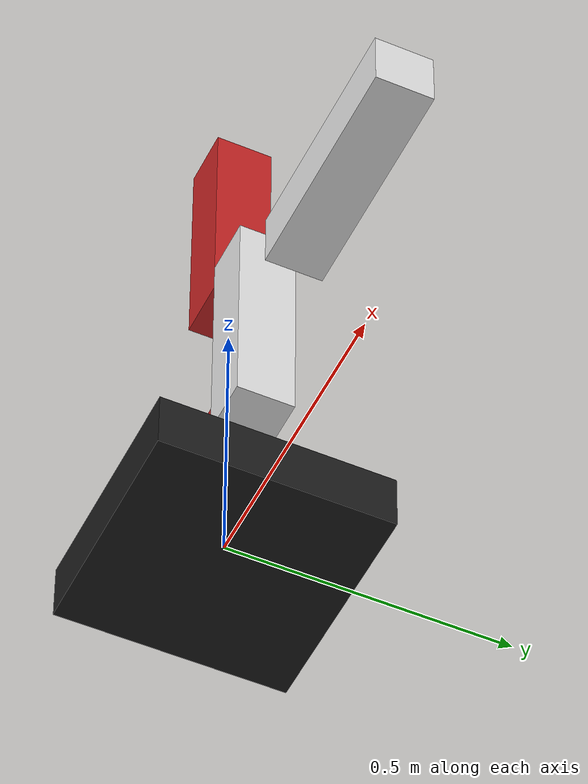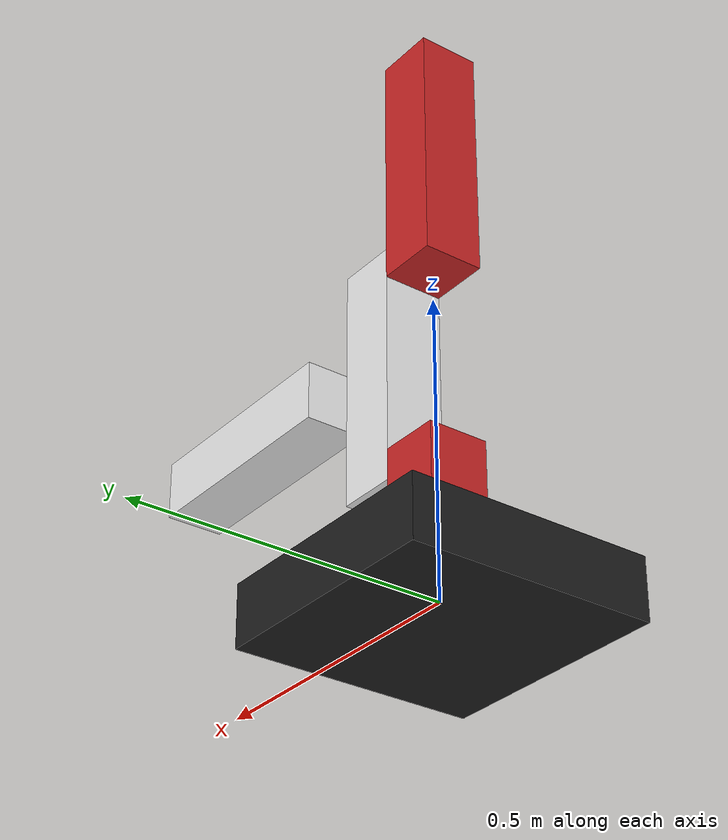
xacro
<?xml version="1.0"?>

<robot name="arm_1dof" xmlns:xacro="http://www.ros.org/wiki/xacro">

    <xacro:include filename="joints.xacro" />

    <material name="Black">
        <color rgba="0.0 0.0 0.0 1.0" />
    </material>
    <material name="Red">
        <color rgba="0.8 0.0 0.0 1.0" />
    </material>
    <material name="White">
        <color rgba="1.0 1.0 1.0 1.0" />
    </material>

    <link name="link_0">
        <visual>
            <origin rpy="0 0 0" xyz="0 0 0" />
            <geometry>
                <box size="0.4 0.4 0.1" />
            </geometry>
        </visual>
        <collision>
            <origin rpy="0 0 0" xyz="0 0 0" />
            <geometry>
                <box size="0.4 0.4 0.1" />
            </geometry>
        </collision>
        <inertial>
            <mass value="10" />
            <inertia ixx="0.03" iyy="0.03" izz="0.03" ixy="0.0" ixz="0.0" iyz="0.0" />
        </inertial>
    </link>

    <gazebo reference="link_0">
        <material>Gazebo/Black</material>
    </gazebo>

    <link name="link_1">
        <visual>
            <origin rpy="0 0 0" xyz="0 0 0.1" />
            <geometry>
                <box size="0.1 0.1 0.2" />
            </geometry>
        </visual>
        <collision>
            <origin rpy="0 0 0" xyz="0 0 0.1" />
            <geometry>
                <box size="0.1 0.1 0.2" />
            </geometry>
        </collision>
        <inertial>
            <mass value="10" />
            <inertia ixx="0.03" iyy="0.03" izz="0.03" ixy="0.0" ixz="0.0" iyz="0.0" />
        </inertial>
    </link>

    <gazebo reference="link_1">
        <material>Gazebo/Red</material>
    </gazebo>

     <joint name="joint_link0_link1" type="revolute" >
        <origin rpy="0 0 0" xyz="0.0 0 0.05" />
        <parent link="link_0" />
        <child link="link_1" />
        <axis xyz="0 0 1" />
        <limit effort="100.0" lower="-1.57" upper="1.57" velocity="1.0" />
    </joint>

    <link name="link_2">
        <visual>
            <origin rpy="0 0 0" xyz="-0.2 0 0.05" />
            <geometry>
                <box size="0.4 0.1 0.1" />
            </geometry>
        </visual>
        <collision>
            <origin rpy="0 0 0" xyz="-0.2 0 0.05" />
            <geometry>
                <box size="0.4 0.1 0.1" />
            </geometry>
        </collision>
        <inertial>
            <mass value="10" />
            <inertia ixx="0.03" iyy="0.03" izz="0.03" ixy="0.0" ixz="0.0" iyz="0.0" />
        </inertial>
    </link>

    <gazebo reference="link_2">
        <material>Gazebo/White</material>
    </gazebo>

    <joint name="joint_link1_link2" type="revolute" >
        <origin rpy="0 1.57057 0" xyz="0.05 0 0.15" />
        <parent link="link_1" />
        <child link="link_2" />
        <axis xyz="0 0 1" />
        <limit effort="100.0" lower="-1.57" upper="1.57" velocity="1.0" />
    </joint>

    <link name="link_3">
        <visual>
            <origin rpy="0 0 0" xyz="-0.2 0 -0.05" />
            <geometry>
                <box size="0.4 0.1 0.1" />
            </geometry>
        </visual>
        <collision>
            <origin rpy="0 0 0" xyz="-0.2 0 -0.05" />
            <geometry>
                <box size="0.4 0.1 0.1" />
            </geometry>
        </collision>
        <inertial>
            <mass value="10" />
            <inertia ixx="0.03" iyy="0.03" izz="0.03" ixy="0.0" ixz="0.0" iyz="0.0" />
        </inertial>
    </link>

    <gazebo reference="link_3">
        <material>Gazebo/Red</material>
    </gazebo>

    <joint name="joint_link2_link3" type="revolute" >
        <origin rpy="0 0 0" xyz="-0.35 0 0.0" />
        <parent link="link_2" />
        <child link="link_3" />
        <axis xyz="0 0 1" />
        <limit effort="100.0" lower="-1.57" upper="1.57" velocity="1.0" />
    </joint>

    <link name="top_link">
        <visual>
            <origin rpy="0 0 0" xyz="0.05 0 0.2" />
            <geometry>
                <box size="0.1 0.1 0.4" />
            </geometry>
        </visual>
        <collision>
            <origin rpy="0 0 0" xyz="0.05 0 0.2" />
            <geometry>
                <box size="0.1 0.1 0.4" />
            </geometry>
        </collision>
        <inertial>
            <mass value="0.1" />
            <inertia ixx="0.03" iyy="0.03" izz="0.03" ixy="0.0" ixz="0.0" iyz="0.0" />
        </inertial>
    </link>

    <gazebo reference="top_link">
        <material>Gazebo/White</material>
    </gazebo>

    <joint name="joint1" type="revolute" >
        <origin rpy="0 0 0" xyz="0.05 0 0.2" />
        <parent link="link_3" />
        <child link="top_link" />
        <axis xyz="1 0 0" />
        <limit effort="100.0" lower="-1.57" upper="1.57" velocity="1.0" />
    </joint>

    <xacro:config_ctr_gazebo />
</robot>
